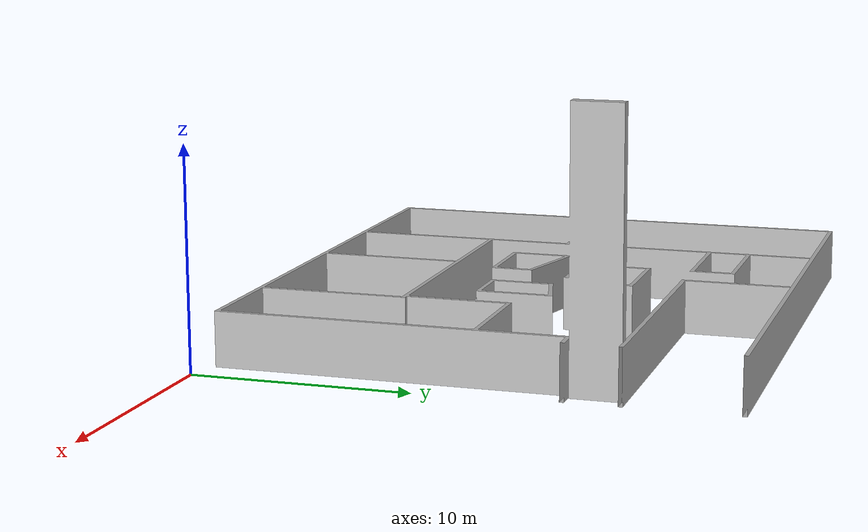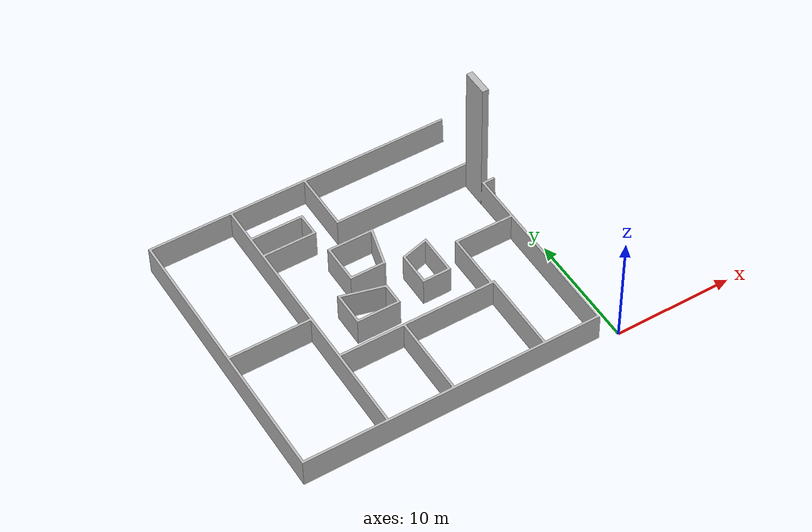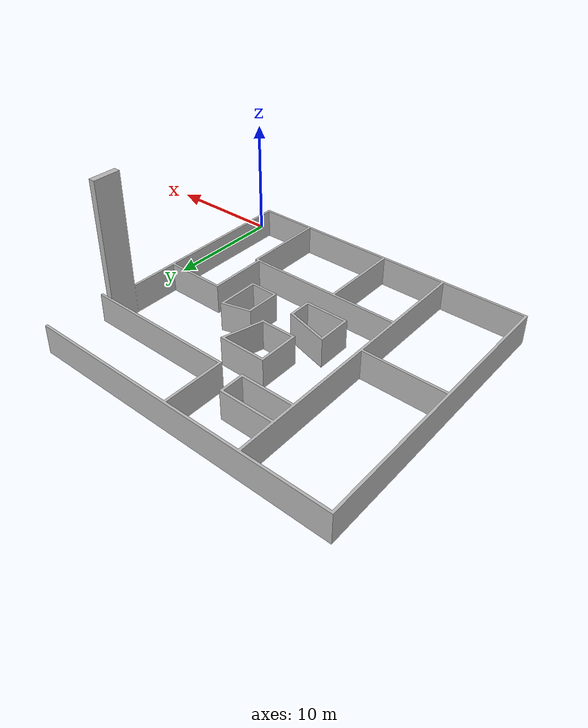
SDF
<?xml version="1.0"?>
<sdf version="1.8">
  <model name="campus_small">
    <static>true</static>

    <link name="walls">
      <visual name="visual">
        <geometry>
          <mesh>
            <uri>model://campus_small/meshes/walls.obj</uri>
            <scale>1 1 1</scale>
          </mesh>
        </geometry>
      </visual>

      <collision name="collision">
        <geometry>
          <mesh>
            <uri>model://campus_small/meshes/walls.obj</uri>
            <scale>1 1 1</scale>
          </mesh>
        </geometry>
      </collision>
    </link>
  </model>
</sdf>
